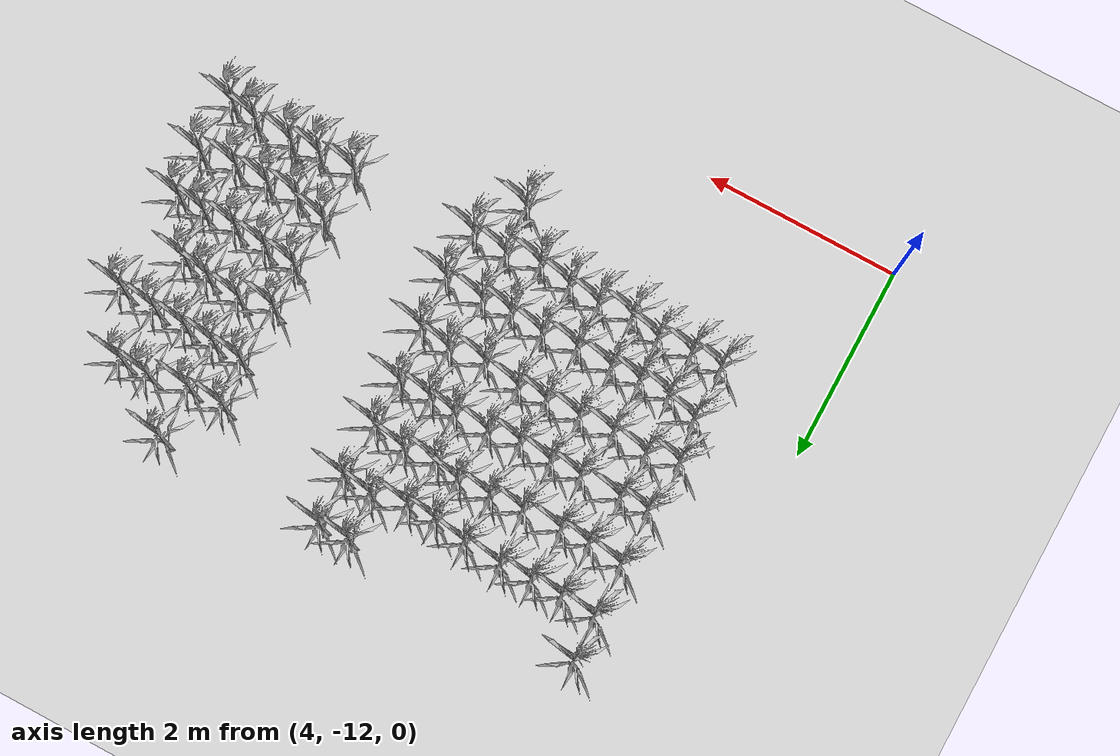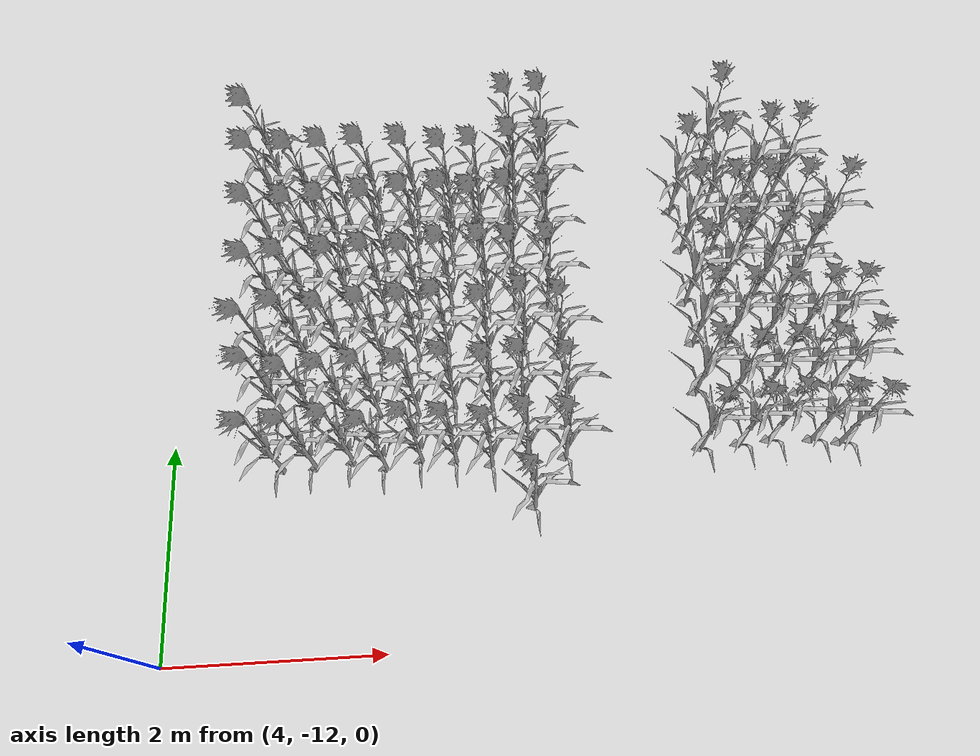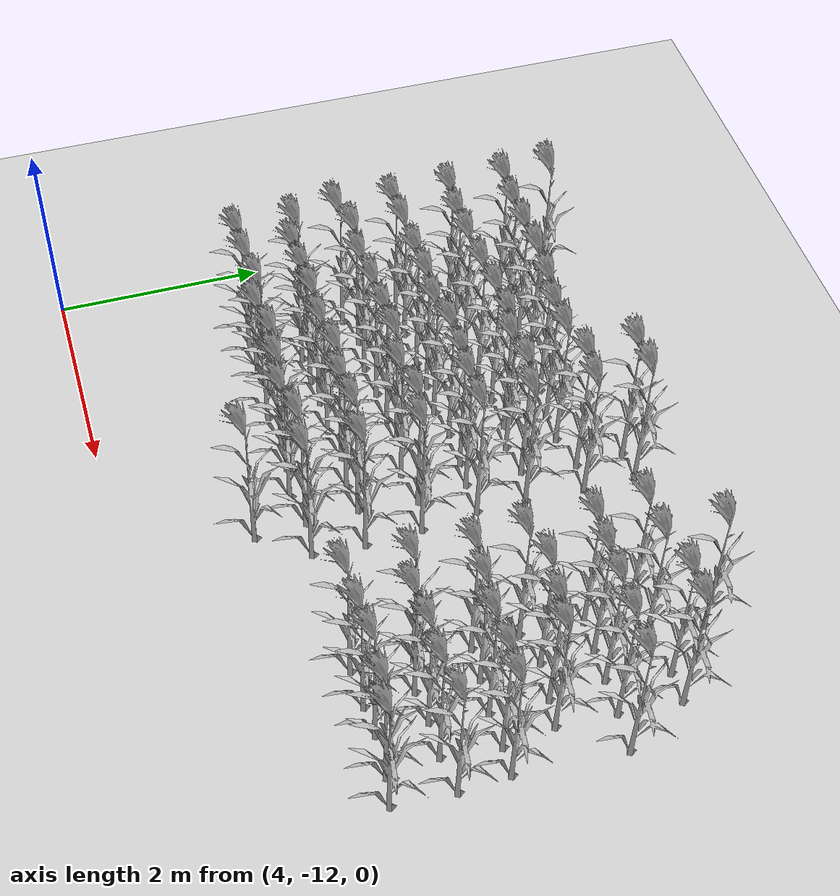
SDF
<sdf version="1.7">
 <world name="farmland_world">
  <model name="ground_plane">
   <static>1</static>
   <link name="link">
    <collision name="collision">
     <geometry><plane><normal>0 0 1</normal><size>40.0 40.0</size></plane></geometry>
     <surface><friction><ode><mu>100</mu><mu2>50</mu2></ode></friction></surface>
    </collision>
    <visual name="visual">
     <cast_shadows>0</cast_shadows>
     <geometry><plane><normal>0 0 1</normal><size>40.0 40.0</size></plane></geometry>
     <material>
      <script><uri>file://media/materials/scripts/gazebo.material</uri><name>Gazebo/Grey</name></script>
     </material>
    </visual>
   </link>
  </model>
  <model name="tree_3_10">
   <static>1</static>
   <link name="link">
    <collision name="collision">
     <geometry><mesh><uri>model://Corn_low_poly/corn.obj</uri><scale>1 1 1</scale></mesh></geometry>
     <surface><friction><ode><mu>100</mu><mu2>50</mu2></ode></friction></surface>
    </collision>
    <visual name="visual">
     <geometry><mesh><uri>model://Corn_low_poly/corn.obj</uri><scale>1 1 1</scale></mesh></geometry>
    </visual>
   </link>
   <pose>4.9650798956197395 -7.193670402811655 0 0 0 0</pose>
  </model>
  <model name="tree_3_11">
   <static>1</static>
   <link name="link">
    <collision name="collision">
     <geometry><mesh><uri>model://Corn_low_poly/corn.obj</uri><scale>1 1 1</scale></mesh></geometry>
     <surface><friction><ode><mu>100</mu><mu2>50</mu2></ode></friction></surface>
    </collision>
    <visual name="visual">
     <geometry><mesh><uri>model://Corn_low_poly/corn.obj</uri><scale>1 1 1</scale></mesh></geometry>
    </visual>
   </link>
   <pose>4.993702073564068 -7.648385346243114 0 0 0 0</pose>
  </model>
  <model name="tree_3_12">
   <static>1</static>
   <link name="link">
    <collision name="collision">
     <geometry><mesh><uri>model://Corn_low_poly/corn.obj</uri><scale>1 1 1</scale></mesh></geometry>
     <surface><friction><ode><mu>100</mu><mu2>50</mu2></ode></friction></surface>
    </collision>
    <visual name="visual">
     <geometry><mesh><uri>model://Corn_low_poly/corn.obj</uri><scale>1 1 1</scale></mesh></geometry>
    </visual>
   </link>
   <pose>5.003658426058906 -8.189910677773742 0 0 0 0</pose>
  </model>
  <model name="tree_3_13">
   <static>1</static>
   <link name="link">
    <collision name="collision">
     <geometry><mesh><uri>model://Corn_low_poly/corn.obj</uri><scale>1 1 1</scale></mesh></geometry>
     <surface><friction><ode><mu>100</mu><mu2>50</mu2></ode></friction></surface>
    </collision>
    <visual name="visual">
     <geometry><mesh><uri>model://Corn_low_poly/corn.obj</uri><scale>1 1 1</scale></mesh></geometry>
    </visual>
   </link>
   <pose>5.020755118753043 -8.75228242143131 0 0 0 0</pose>
  </model>
  <model name="tree_3_14">
   <static>1</static>
   <link name="link">
    <collision name="collision">
     <geometry><mesh><uri>model://Corn_low_poly/corn.obj</uri><scale>1 1 1</scale></mesh></geometry>
     <surface><friction><ode><mu>100</mu><mu2>50</mu2></ode></friction></surface>
    </collision>
    <visual name="visual">
     <geometry><mesh><uri>model://Corn_low_poly/corn.obj</uri><scale>1 1 1</scale></mesh></geometry>
    </visual>
   </link>
   <pose>4.969620573707075 -9.288858709150103 0 0 0 0</pose>
  </model>
  <model name="tree_3_15">
   <static>1</static>
   <link name="link">
    <collision name="collision">
     <geometry><mesh><uri>model://Corn_low_poly/corn.obj</uri><scale>1 1 1</scale></mesh></geometry>
     <surface><friction><ode><mu>100</mu><mu2>50</mu2></ode></friction></surface>
    </collision>
    <visual name="visual">
     <geometry><mesh><uri>model://Corn_low_poly/corn.obj</uri><scale>1 1 1</scale></mesh></geometry>
    </visual>
   </link>
   <pose>5.041643996348989 -9.711755568848426 0 0 0 0</pose>
  </model>
  <model name="tree_3_16">
   <static>1</static>
   <link name="link">
    <collision name="collision">
     <geometry><mesh><uri>model://Corn_low_poly/corn.obj</uri><scale>1 1 1</scale></mesh></geometry>
     <surface><friction><ode><mu>100</mu><mu2>50</mu2></ode></friction></surface>
    </collision>
    <visual name="visual">
     <geometry><mesh><uri>model://Corn_low_poly/corn.obj</uri><scale>1 1 1</scale></mesh></geometry>
    </visual>
   </link>
   <pose>5.045789292416969 -10.260821275985645 0 0 0 0</pose>
  </model>
  <model name="tree_3_41">
   <static>1</static>
   <link name="link">
    <collision name="collision">
     <geometry><mesh><uri>model://Corn_low_poly/corn.obj</uri><scale>1 1 1</scale></mesh></geometry>
     <surface><friction><ode><mu>100</mu><mu2>50</mu2></ode></friction></surface>
    </collision>
    <visual name="visual">
     <geometry><mesh><uri>model://Corn_low_poly/corn.obj</uri><scale>1 1 1</scale></mesh></geometry>
    </visual>
   </link>
   <pose>5.347433770338494 -7.672995002953628 0 0 0 0</pose>
  </model>
  <model name="tree_3_42">
   <static>1</static>
   <link name="link">
    <collision name="collision">
     <geometry><mesh><uri>model://Corn_low_poly/corn.obj</uri><scale>1 1 1</scale></mesh></geometry>
     <surface><friction><ode><mu>100</mu><mu2>50</mu2></ode></friction></surface>
    </collision>
    <visual name="visual">
     <geometry><mesh><uri>model://Corn_low_poly/corn.obj</uri><scale>1 1 1</scale></mesh></geometry>
    </visual>
   </link>
   <pose>5.356484382381352 -8.224193118076165 0 0 0 0</pose>
  </model>
  <model name="tree_3_43">
   <static>1</static>
   <link name="link">
    <collision name="collision">
     <geometry><mesh><uri>model://Corn_low_poly/corn.obj</uri><scale>1 1 1</scale></mesh></geometry>
     <surface><friction><ode><mu>100</mu><mu2>50</mu2></ode></friction></surface>
    </collision>
    <visual name="visual">
     <geometry><mesh><uri>model://Corn_low_poly/corn.obj</uri><scale>1 1 1</scale></mesh></geometry>
    </visual>
   </link>
   <pose>5.3041799792665065 -8.740538514626683 0 0 0 0</pose>
  </model>
  <model name="tree_3_44">
   <static>1</static>
   <link name="link">
    <collision name="collision">
     <geometry><mesh><uri>model://Corn_low_poly/corn.obj</uri><scale>1 1 1</scale></mesh></geometry>
     <surface><friction><ode><mu>100</mu><mu2>50</mu2></ode></friction></surface>
    </collision>
    <visual name="visual">
     <geometry><mesh><uri>model://Corn_low_poly/corn.obj</uri><scale>1 1 1</scale></mesh></geometry>
    </visual>
   </link>
   <pose>5.284650379985434 -9.210675159722184 0 0 0 0</pose>
  </model>
  <model name="tree_3_45">
   <static>1</static>
   <link name="link">
    <collision name="collision">
     <geometry><mesh><uri>model://Corn_low_poly/corn.obj</uri><scale>1 1 1</scale></mesh></geometry>
     <surface><friction><ode><mu>100</mu><mu2>50</mu2></ode></friction></surface>
    </collision>
    <visual name="visual">
     <geometry><mesh><uri>model://Corn_low_poly/corn.obj</uri><scale>1 1 1</scale></mesh></geometry>
    </visual>
   </link>
   <pose>5.3525447544302 -9.800953652820475 0 0 0 0</pose>
  </model>
  <model name="tree_3_46">
   <static>1</static>
   <link name="link">
    <collision name="collision">
     <geometry><mesh><uri>model://Corn_low_poly/corn.obj</uri><scale>1 1 1</scale></mesh></geometry>
     <surface><friction><ode><mu>100</mu><mu2>50</mu2></ode></friction></surface>
    </collision>
    <visual name="visual">
     <geometry><mesh><uri>model://Corn_low_poly/corn.obj</uri><scale>1 1 1</scale></mesh></geometry>
    </visual>
   </link>
   <pose>5.3533770095503845 -10.256783160068105 0 0 0 0</pose>
  </model>
  <model name="tree_3_71">
   <static>1</static>
   <link name="link">
    <collision name="collision">
     <geometry><mesh><uri>model://Corn_low_poly/corn.obj</uri><scale>1 1 1</scale></mesh></geometry>
     <surface><friction><ode><mu>100</mu><mu2>50</mu2></ode></friction></surface>
    </collision>
    <visual name="visual">
     <geometry><mesh><uri>model://Corn_low_poly/corn.obj</uri><scale>1 1 1</scale></mesh></geometry>
    </visual>
   </link>
   <pose>5.661311697878698 -7.669361917047851 0 0 0 0</pose>
  </model>
  <model name="tree_3_72">
   <static>1</static>
   <link name="link">
    <collision name="collision">
     <geometry><mesh><uri>model://Corn_low_poly/corn.obj</uri><scale>1 1 1</scale></mesh></geometry>
     <surface><friction><ode><mu>100</mu><mu2>50</mu2></ode></friction></surface>
    </collision>
    <visual name="visual">
     <geometry><mesh><uri>model://Corn_low_poly/corn.obj</uri><scale>1 1 1</scale></mesh></geometry>
    </visual>
   </link>
   <pose>5.6439205396495575 -8.217048657555292 0 0 0 0</pose>
  </model>
  <model name="tree_3_73">
   <static>1</static>
   <link name="link">
    <collision name="collision">
     <geometry><mesh><uri>model://Corn_low_poly/corn.obj</uri><scale>1 1 1</scale></mesh></geometry>
     <surface><friction><ode><mu>100</mu><mu2>50</mu2></ode></friction></surface>
    </collision>
    <visual name="visual">
     <geometry><mesh><uri>model://Corn_low_poly/corn.obj</uri><scale>1 1 1</scale></mesh></geometry>
    </visual>
   </link>
   <pose>5.719555361144498 -8.738605992374277 0 0 0 0</pose>
  </model>
  <model name="tree_3_74">
   <static>1</static>
   <link name="link">
    <collision name="collision">
     <geometry><mesh><uri>model://Corn_low_poly/corn.obj</uri><scale>1 1 1</scale></mesh></geometry>
     <surface><friction><ode><mu>100</mu><mu2>50</mu2></ode></friction></surface>
    </collision>
    <visual name="visual">
     <geometry><mesh><uri>model://Corn_low_poly/corn.obj</uri><scale>1 1 1</scale></mesh></geometry>
    </visual>
   </link>
   <pose>5.646397490240546 -9.248619289029806 0 0 0 0</pose>
  </model>
  <model name="tree_3_75">
   <static>1</static>
   <link name="link">
    <collision name="collision">
     <geometry><mesh><uri>model://Corn_low_poly/corn.obj</uri><scale>1 1 1</scale></mesh></geometry>
     <surface><friction><ode><mu>100</mu><mu2>50</mu2></ode></friction></surface>
    </collision>
    <visual name="visual">
     <geometry><mesh><uri>model://Corn_low_poly/corn.obj</uri><scale>1 1 1</scale></mesh></geometry>
    </visual>
   </link>
   <pose>5.66070874612616 -9.793900644178425 0 0 0 0</pose>
  </model>
  <model name="tree_3_76">
   <static>1</static>
   <link name="link">
    <collision name="collision">
     <geometry><mesh><uri>model://Corn_low_poly/corn.obj</uri><scale>1 1 1</scale></mesh></geometry>
     <surface><friction><ode><mu>100</mu><mu2>50</mu2></ode></friction></surface>
    </collision>
    <visual name="visual">
     <geometry><mesh><uri>model://Corn_low_poly/corn.obj</uri><scale>1 1 1</scale></mesh></geometry>
    </visual>
   </link>
   <pose>5.698885564872083 -10.226248882863663 0 0 0 0</pose>
  </model>
  <model name="tree_3_101">
   <static>1</static>
   <link name="link">
    <collision name="collision">
     <geometry><mesh><uri>model://Corn_low_poly/corn.obj</uri><scale>1 1 1</scale></mesh></geometry>
     <surface><friction><ode><mu>100</mu><mu2>50</mu2></ode></friction></surface>
    </collision>
    <visual name="visual">
     <geometry><mesh><uri>model://Corn_low_poly/corn.obj</uri><scale>1 1 1</scale></mesh></geometry>
    </visual>
   </link>
   <pose>5.985646158219377 -7.658703395121995 0 0 0 0</pose>
  </model>
  <model name="tree_3_102">
   <static>1</static>
   <link name="link">
    <collision name="collision">
     <geometry><mesh><uri>model://Corn_low_poly/corn.obj</uri><scale>1 1 1</scale></mesh></geometry>
     <surface><friction><ode><mu>100</mu><mu2>50</mu2></ode></friction></surface>
    </collision>
    <visual name="visual">
     <geometry><mesh><uri>model://Corn_low_poly/corn.obj</uri><scale>1 1 1</scale></mesh></geometry>
    </visual>
   </link>
   <pose>6.039260208164918 -8.204060399303113 0 0 0 0</pose>
  </model>
  <model name="tree_3_103">
   <static>1</static>
   <link name="link">
    <collision name="collision">
     <geometry><mesh><uri>model://Corn_low_poly/corn.obj</uri><scale>1 1 1</scale></mesh></geometry>
     <surface><friction><ode><mu>100</mu><mu2>50</mu2></ode></friction></surface>
    </collision>
    <visual name="visual">
     <geometry><mesh><uri>model://Corn_low_poly/corn.obj</uri><scale>1 1 1</scale></mesh></geometry>
    </visual>
   </link>
   <pose>6.029144638197376 -8.72626368128247 0 0 0 0</pose>
  </model>
  <model name="tree_3_104">
   <static>1</static>
   <link name="link">
    <collision name="collision">
     <geometry><mesh><uri>model://Corn_low_poly/corn.obj</uri><scale>1 1 1</scale></mesh></geometry>
     <surface><friction><ode><mu>100</mu><mu2>50</mu2></ode></friction></surface>
    </collision>
    <visual name="visual">
     <geometry><mesh><uri>model://Corn_low_poly/corn.obj</uri><scale>1 1 1</scale></mesh></geometry>
    </visual>
   </link>
   <pose>5.994824262655085 -9.222952666662453 0 0 0 0</pose>
  </model>
  <model name="tree_3_105">
   <static>1</static>
   <link name="link">
    <collision name="collision">
     <geometry><mesh><uri>model://Corn_low_poly/corn.obj</uri><scale>1 1 1</scale></mesh></geometry>
     <surface><friction><ode><mu>100</mu><mu2>50</mu2></ode></friction></surface>
    </collision>
    <visual name="visual">
     <geometry><mesh><uri>model://Corn_low_poly/corn.obj</uri><scale>1 1 1</scale></mesh></geometry>
    </visual>
   </link>
   <pose>5.953345509949654 -9.779086508931684 0 0 0 0</pose>
  </model>
  <model name="tree_3_106">
   <static>1</static>
   <link name="link">
    <collision name="collision">
     <geometry><mesh><uri>model://Corn_low_poly/corn.obj</uri><scale>1 1 1</scale></mesh></geometry>
     <surface><friction><ode><mu>100</mu><mu2>50</mu2></ode></friction></surface>
    </collision>
    <visual name="visual">
     <geometry><mesh><uri>model://Corn_low_poly/corn.obj</uri><scale>1 1 1</scale></mesh></geometry>
    </visual>
   </link>
   <pose>6.00638727377476 -10.301760527313881 0 0 0 0</pose>
  </model>
  <model name="tree_3_131">
   <static>1</static>
   <link name="link">
    <collision name="collision">
     <geometry><mesh><uri>model://Corn_low_poly/corn.obj</uri><scale>1 1 1</scale></mesh></geometry>
     <surface><friction><ode><mu>100</mu><mu2>50</mu2></ode></friction></surface>
    </collision>
    <visual name="visual">
     <geometry><mesh><uri>model://Corn_low_poly/corn.obj</uri><scale>1 1 1</scale></mesh></geometry>
    </visual>
   </link>
   <pose>6.373540733278397 -7.6818291887618955 0 0 0 0</pose>
  </model>
  <model name="tree_3_132">
   <static>1</static>
   <link name="link">
    <collision name="collision">
     <geometry><mesh><uri>model://Corn_low_poly/corn.obj</uri><scale>1 1 1</scale></mesh></geometry>
     <surface><friction><ode><mu>100</mu><mu2>50</mu2></ode></friction></surface>
    </collision>
    <visual name="visual">
     <geometry><mesh><uri>model://Corn_low_poly/corn.obj</uri><scale>1 1 1</scale></mesh></geometry>
    </visual>
   </link>
   <pose>6.372202885585181 -8.173757598020659 0 0 0 0</pose>
  </model>
  <model name="tree_3_133">
   <static>1</static>
   <link name="link">
    <collision name="collision">
     <geometry><mesh><uri>model://Corn_low_poly/corn.obj</uri><scale>1 1 1</scale></mesh></geometry>
     <surface><friction><ode><mu>100</mu><mu2>50</mu2></ode></friction></surface>
    </collision>
    <visual name="visual">
     <geometry><mesh><uri>model://Corn_low_poly/corn.obj</uri><scale>1 1 1</scale></mesh></geometry>
    </visual>
   </link>
   <pose>6.366044787179501 -8.75261835114188 0 0 0 0</pose>
  </model>
  <model name="tree_3_134">
   <static>1</static>
   <link name="link">
    <collision name="collision">
     <geometry><mesh><uri>model://Corn_low_poly/corn.obj</uri><scale>1 1 1</scale></mesh></geometry>
     <surface><friction><ode><mu>100</mu><mu2>50</mu2></ode></friction></surface>
    </collision>
    <visual name="visual">
     <geometry><mesh><uri>model://Corn_low_poly/corn.obj</uri><scale>1 1 1</scale></mesh></geometry>
    </visual>
   </link>
   <pose>6.341128701908847 -9.213851420503325 0 0 0 0</pose>
  </model>
  <model name="tree_3_135">
   <static>1</static>
   <link name="link">
    <collision name="collision">
     <geometry><mesh><uri>model://Corn_low_poly/corn.obj</uri><scale>1 1 1</scale></mesh></geometry>
     <surface><friction><ode><mu>100</mu><mu2>50</mu2></ode></friction></surface>
    </collision>
    <visual name="visual">
     <geometry><mesh><uri>model://Corn_low_poly/corn.obj</uri><scale>1 1 1</scale></mesh></geometry>
    </visual>
   </link>
   <pose>6.322286093233531 -9.793420267122933 0 0 0 0</pose>
  </model>
  <model name="tree_3_136">
   <static>1</static>
   <link name="link">
    <collision name="collision">
     <geometry><mesh><uri>model://Corn_low_poly/corn.obj</uri><scale>1 1 1</scale></mesh></geometry>
     <surface><friction><ode><mu>100</mu><mu2>50</mu2></ode></friction></surface>
    </collision>
    <visual name="visual">
     <geometry><mesh><uri>model://Corn_low_poly/corn.obj</uri><scale>1 1 1</scale></mesh></geometry>
    </visual>
   </link>
   <pose>6.340955341934287 -10.248210584478237 0 0 0 0</pose>
  </model>
  <model name="tree_3_161">
   <static>1</static>
   <link name="link">
    <collision name="collision">
     <geometry><mesh><uri>model://Corn_low_poly/corn.obj</uri><scale>1 1 1</scale></mesh></geometry>
     <surface><friction><ode><mu>100</mu><mu2>50</mu2></ode></friction></surface>
    </collision>
    <visual name="visual">
     <geometry><mesh><uri>model://Corn_low_poly/corn.obj</uri><scale>1 1 1</scale></mesh></geometry>
    </visual>
   </link>
   <pose>6.716355894666865 -7.737704395986859 0 0 0 0</pose>
  </model>
  <model name="tree_3_162">
   <static>1</static>
   <link name="link">
    <collision name="collision">
     <geometry><mesh><uri>model://Corn_low_poly/corn.obj</uri><scale>1 1 1</scale></mesh></geometry>
     <surface><friction><ode><mu>100</mu><mu2>50</mu2></ode></friction></surface>
    </collision>
    <visual name="visual">
     <geometry><mesh><uri>model://Corn_low_poly/corn.obj</uri><scale>1 1 1</scale></mesh></geometry>
    </visual>
   </link>
   <pose>6.707527495847406 -8.160439321991369 0 0 0 0</pose>
  </model>
  <model name="tree_3_163">
   <static>1</static>
   <link name="link">
    <collision name="collision">
     <geometry><mesh><uri>model://Corn_low_poly/corn.obj</uri><scale>1 1 1</scale></mesh></geometry>
     <surface><friction><ode><mu>100</mu><mu2>50</mu2></ode></friction></surface>
    </collision>
    <visual name="visual">
     <geometry><mesh><uri>model://Corn_low_poly/corn.obj</uri><scale>1 1 1</scale></mesh></geometry>
    </visual>
   </link>
   <pose>6.676728354621521 -8.69605451618807 0 0 0 0</pose>
  </model>
  <model name="tree_3_164">
   <static>1</static>
   <link name="link">
    <collision name="collision">
     <geometry><mesh><uri>model://Corn_low_poly/corn.obj</uri><scale>1 1 1</scale></mesh></geometry>
     <surface><friction><ode><mu>100</mu><mu2>50</mu2></ode></friction></surface>
    </collision>
    <visual name="visual">
     <geometry><mesh><uri>model://Corn_low_poly/corn.obj</uri><scale>1 1 1</scale></mesh></geometry>
    </visual>
   </link>
   <pose>6.631105759231535 -9.200464305325195 0 0 0 0</pose>
  </model>
  <model name="tree_3_165">
   <static>1</static>
   <link name="link">
    <collision name="collision">
     <geometry><mesh><uri>model://Corn_low_poly/corn.obj</uri><scale>1 1 1</scale></mesh></geometry>
     <surface><friction><ode><mu>100</mu><mu2>50</mu2></ode></friction></surface>
    </collision>
    <visual name="visual">
     <geometry><mesh><uri>model://Corn_low_poly/corn.obj</uri><scale>1 1 1</scale></mesh></geometry>
    </visual>
   </link>
   <pose>6.673765809602625 -9.748652084910914 0 0 0 0</pose>
  </model>
  <model name="tree_3_166">
   <static>1</static>
   <link name="link">
    <collision name="collision">
     <geometry><mesh><uri>model://Corn_low_poly/corn.obj</uri><scale>1 1 1</scale></mesh></geometry>
     <surface><friction><ode><mu>100</mu><mu2>50</mu2></ode></friction></surface>
    </collision>
    <visual name="visual">
     <geometry><mesh><uri>model://Corn_low_poly/corn.obj</uri><scale>1 1 1</scale></mesh></geometry>
    </visual>
   </link>
   <pose>6.6638486366236735 -10.27659725007499 0 0 0 0</pose>
  </model>
  <model name="tree_3_191">
   <static>1</static>
   <link name="link">
    <collision name="collision">
     <geometry><mesh><uri>model://Corn_low_poly/corn.obj</uri><scale>1 1 1</scale></mesh></geometry>
     <surface><friction><ode><mu>100</mu><mu2>50</mu2></ode></friction></surface>
    </collision>
    <visual name="visual">
     <geometry><mesh><uri>model://Corn_low_poly/corn.obj</uri><scale>1 1 1</scale></mesh></geometry>
    </visual>
   </link>
   <pose>7.000311583929282 -7.736366997130274 0 0 0 0</pose>
  </model>
  <model name="tree_3_192">
   <static>1</static>
   <link name="link">
    <collision name="collision">
     <geometry><mesh><uri>model://Corn_low_poly/corn.obj</uri><scale>1 1 1</scale></mesh></geometry>
     <surface><friction><ode><mu>100</mu><mu2>50</mu2></ode></friction></surface>
    </collision>
    <visual name="visual">
     <geometry><mesh><uri>model://Corn_low_poly/corn.obj</uri><scale>1 1 1</scale></mesh></geometry>
    </visual>
   </link>
   <pose>6.969106373423477 -8.223321744059641 0 0 0 0</pose>
  </model>
  <model name="tree_3_193">
   <static>1</static>
   <link name="link">
    <collision name="collision">
     <geometry><mesh><uri>model://Corn_low_poly/corn.obj</uri><scale>1 1 1</scale></mesh></geometry>
     <surface><friction><ode><mu>100</mu><mu2>50</mu2></ode></friction></surface>
    </collision>
    <visual name="visual">
     <geometry><mesh><uri>model://Corn_low_poly/corn.obj</uri><scale>1 1 1</scale></mesh></geometry>
    </visual>
   </link>
   <pose>7.0354257160998666 -8.698599415208227 0 0 0 0</pose>
  </model>
  <model name="tree_3_194">
   <static>1</static>
   <link name="link">
    <collision name="collision">
     <geometry><mesh><uri>model://Corn_low_poly/corn.obj</uri><scale>1 1 1</scale></mesh></geometry>
     <surface><friction><ode><mu>100</mu><mu2>50</mu2></ode></friction></surface>
    </collision>
    <visual name="visual">
     <geometry><mesh><uri>model://Corn_low_poly/corn.obj</uri><scale>1 1 1</scale></mesh></geometry>
    </visual>
   </link>
   <pose>7.016016872381592 -9.26633794154723 0 0 0 0</pose>
  </model>
  <model name="tree_3_195">
   <static>1</static>
   <link name="link">
    <collision name="collision">
     <geometry><mesh><uri>model://Corn_low_poly/corn.obj</uri><scale>1 1 1</scale></mesh></geometry>
     <surface><friction><ode><mu>100</mu><mu2>50</mu2></ode></friction></surface>
    </collision>
    <visual name="visual">
     <geometry><mesh><uri>model://Corn_low_poly/corn.obj</uri><scale>1 1 1</scale></mesh></geometry>
    </visual>
   </link>
   <pose>7.027167011870498 -9.792437796397232 0 0 0 0</pose>
  </model>
  <model name="tree_3_196">
   <static>1</static>
   <link name="link">
    <collision name="collision">
     <geometry><mesh><uri>model://Corn_low_poly/corn.obj</uri><scale>1 1 1</scale></mesh></geometry>
     <surface><friction><ode><mu>100</mu><mu2>50</mu2></ode></friction></surface>
    </collision>
    <visual name="visual">
     <geometry><mesh><uri>model://Corn_low_poly/corn.obj</uri><scale>1 1 1</scale></mesh></geometry>
    </visual>
   </link>
   <pose>6.998509001560315 -10.324810387990603 0 0 0 0</pose>
  </model>
  <model name="tree_3_220">
   <static>1</static>
   <link name="link">
    <collision name="collision">
     <geometry><mesh><uri>model://Corn_low_poly/corn.obj</uri><scale>1 1 1</scale></mesh></geometry>
     <surface><friction><ode><mu>100</mu><mu2>50</mu2></ode></friction></surface>
    </collision>
    <visual name="visual">
     <geometry><mesh><uri>model://Corn_low_poly/corn.obj</uri><scale>1 1 1</scale></mesh></geometry>
    </visual>
   </link>
   <pose>7.333557292185769 -7.192689295135034 0 0 0 0</pose>
  </model>
  <model name="tree_3_221">
   <static>1</static>
   <link name="link">
    <collision name="collision">
     <geometry><mesh><uri>model://Corn_low_poly/corn.obj</uri><scale>1 1 1</scale></mesh></geometry>
     <surface><friction><ode><mu>100</mu><mu2>50</mu2></ode></friction></surface>
    </collision>
    <visual name="visual">
     <geometry><mesh><uri>model://Corn_low_poly/corn.obj</uri><scale>1 1 1</scale></mesh></geometry>
    </visual>
   </link>
   <pose>7.35149359200754 -7.658956162408567 0 0 0 0</pose>
  </model>
  <model name="tree_3_222">
   <static>1</static>
   <link name="link">
    <collision name="collision">
     <geometry><mesh><uri>model://Corn_low_poly/corn.obj</uri><scale>1 1 1</scale></mesh></geometry>
     <surface><friction><ode><mu>100</mu><mu2>50</mu2></ode></friction></surface>
    </collision>
    <visual name="visual">
     <geometry><mesh><uri>model://Corn_low_poly/corn.obj</uri><scale>1 1 1</scale></mesh></geometry>
    </visual>
   </link>
   <pose>7.287806354683445 -8.17942623815544 0 0 0 0</pose>
  </model>
  <model name="tree_3_223">
   <static>1</static>
   <link name="link">
    <collision name="collision">
     <geometry><mesh><uri>model://Corn_low_poly/corn.obj</uri><scale>1 1 1</scale></mesh></geometry>
     <surface><friction><ode><mu>100</mu><mu2>50</mu2></ode></friction></surface>
    </collision>
    <visual name="visual">
     <geometry><mesh><uri>model://Corn_low_poly/corn.obj</uri><scale>1 1 1</scale></mesh></geometry>
    </visual>
   </link>
   <pose>7.297995084521337 -8.722580301019502 0 0 0 0</pose>
  </model>
  <model name="tree_3_224">
   <static>1</static>
   <link name="link">
    <collision name="collision">
     <geometry><mesh><uri>model://Corn_low_poly/corn.obj</uri><scale>1 1 1</scale></mesh></geometry>
     <surface><friction><ode><mu>100</mu><mu2>50</mu2></ode></friction></surface>
    </collision>
    <visual name="visual">
     <geometry><mesh><uri>model://Corn_low_poly/corn.obj</uri><scale>1 1 1</scale></mesh></geometry>
    </visual>
   </link>
   <pose>7.368613458871989 -9.204936440424559 0 0 0 0</pose>
  </model>
  <model name="tree_3_225">
   <static>1</static>
   <link name="link">
    <collision name="collision">
     <geometry><mesh><uri>model://Corn_low_poly/corn.obj</uri><scale>1 1 1</scale></mesh></geometry>
     <surface><friction><ode><mu>100</mu><mu2>50</mu2></ode></friction></surface>
    </collision>
    <visual name="visual">
     <geometry><mesh><uri>model://Corn_low_poly/corn.obj</uri><scale>1 1 1</scale></mesh></geometry>
    </visual>
   </link>
   <pose>7.315396992477377 -9.763208704090252 0 0 0 0</pose>
  </model>
  <model name="tree_3_226">
   <static>1</static>
   <link name="link">
    <collision name="collision">
     <geometry><mesh><uri>model://Corn_low_poly/corn.obj</uri><scale>1 1 1</scale></mesh></geometry>
     <surface><friction><ode><mu>100</mu><mu2>50</mu2></ode></friction></surface>
    </collision>
    <visual name="visual">
     <geometry><mesh><uri>model://Corn_low_poly/corn.obj</uri><scale>1 1 1</scale></mesh></geometry>
    </visual>
   </link>
   <pose>7.333482017778501 -10.257442969045329 0 0 0 0</pose>
  </model>
  <model name="tree_3_227">
   <static>1</static>
   <link name="link">
    <collision name="collision">
     <geometry><mesh><uri>model://Corn_low_poly/corn.obj</uri><scale>1 1 1</scale></mesh></geometry>
     <surface><friction><ode><mu>100</mu><mu2>50</mu2></ode></friction></surface>
    </collision>
    <visual name="visual">
     <geometry><mesh><uri>model://Corn_low_poly/corn.obj</uri><scale>1 1 1</scale></mesh></geometry>
    </visual>
   </link>
   <pose>7.374578958075521 -10.743990523598933 0 0 0 0</pose>
  </model>
  <model name="tree_3_250">
   <static>1</static>
   <link name="link">
    <collision name="collision">
     <geometry><mesh><uri>model://Corn_low_poly/corn.obj</uri><scale>1 1 1</scale></mesh></geometry>
     <surface><friction><ode><mu>100</mu><mu2>50</mu2></ode></friction></surface>
    </collision>
    <visual name="visual">
     <geometry><mesh><uri>model://Corn_low_poly/corn.obj</uri><scale>1 1 1</scale></mesh></geometry>
    </visual>
   </link>
   <pose>7.635001736811245 -7.1887812025689914 0 0 0 0</pose>
  </model>
  <model name="tree_3_251">
   <static>1</static>
   <link name="link">
    <collision name="collision">
     <geometry><mesh><uri>model://Corn_low_poly/corn.obj</uri><scale>1 1 1</scale></mesh></geometry>
     <surface><friction><ode><mu>100</mu><mu2>50</mu2></ode></friction></surface>
    </collision>
    <visual name="visual">
     <geometry><mesh><uri>model://Corn_low_poly/corn.obj</uri><scale>1 1 1</scale></mesh></geometry>
    </visual>
   </link>
   <pose>7.6471158698127635 -7.690438857786324 0 0 0 0</pose>
  </model>
  <model name="tree_3_252">
   <static>1</static>
   <link name="link">
    <collision name="collision">
     <geometry><mesh><uri>model://Corn_low_poly/corn.obj</uri><scale>1 1 1</scale></mesh></geometry>
     <surface><friction><ode><mu>100</mu><mu2>50</mu2></ode></friction></surface>
    </collision>
    <visual name="visual">
     <geometry><mesh><uri>model://Corn_low_poly/corn.obj</uri><scale>1 1 1</scale></mesh></geometry>
    </visual>
   </link>
   <pose>7.620635269281182 -8.25019787831717 0 0 0 0</pose>
  </model>
  <model name="tree_3_253">
   <static>1</static>
   <link name="link">
    <collision name="collision">
     <geometry><mesh><uri>model://Corn_low_poly/corn.obj</uri><scale>1 1 1</scale></mesh></geometry>
     <surface><friction><ode><mu>100</mu><mu2>50</mu2></ode></friction></surface>
    </collision>
    <visual name="visual">
     <geometry><mesh><uri>model://Corn_low_poly/corn.obj</uri><scale>1 1 1</scale></mesh></geometry>
    </visual>
   </link>
   <pose>7.62443281904786 -8.719268950950203 0 0 0 0</pose>
  </model>
  <model name="tree_3_254">
   <static>1</static>
   <link name="link">
    <collision name="collision">
     <geometry><mesh><uri>model://Corn_low_poly/corn.obj</uri><scale>1 1 1</scale></mesh></geometry>
     <surface><friction><ode><mu>100</mu><mu2>50</mu2></ode></friction></surface>
    </collision>
    <visual name="visual">
     <geometry><mesh><uri>model://Corn_low_poly/corn.obj</uri><scale>1 1 1</scale></mesh></geometry>
    </visual>
   </link>
   <pose>7.689035022372194 -9.262581364216832 0 0 0 0</pose>
  </model>
  <model name="tree_3_255">
   <static>1</static>
   <link name="link">
    <collision name="collision">
     <geometry><mesh><uri>model://Corn_low_poly/corn.obj</uri><scale>1 1 1</scale></mesh></geometry>
     <surface><friction><ode><mu>100</mu><mu2>50</mu2></ode></friction></surface>
    </collision>
    <visual name="visual">
     <geometry><mesh><uri>model://Corn_low_poly/corn.obj</uri><scale>1 1 1</scale></mesh></geometry>
    </visual>
   </link>
   <pose>7.719204389873397 -9.79984768128034 0 0 0 0</pose>
  </model>
  <model name="tree_3_256">
   <static>1</static>
   <link name="link">
    <collision name="collision">
     <geometry><mesh><uri>model://Corn_low_poly/corn.obj</uri><scale>1 1 1</scale></mesh></geometry>
     <surface><friction><ode><mu>100</mu><mu2>50</mu2></ode></friction></surface>
    </collision>
    <visual name="visual">
     <geometry><mesh><uri>model://Corn_low_poly/corn.obj</uri><scale>1 1 1</scale></mesh></geometry>
    </visual>
   </link>
   <pose>7.692024863550409 -10.29143175373595 0 0 0 0</pose>
  </model>
  <model name="tree_3_281">
   <static>1</static>
   <link name="link">
    <collision name="collision">
     <geometry><mesh><uri>model://Corn_low_poly/corn.obj</uri><scale>1 1 1</scale></mesh></geometry>
     <surface><friction><ode><mu>100</mu><mu2>50</mu2></ode></friction></surface>
    </collision>
    <visual name="visual">
     <geometry><mesh><uri>model://Corn_low_poly/corn.obj</uri><scale>1 1 1</scale></mesh></geometry>
    </visual>
   </link>
   <pose>8.964598388169719 -7.7291985321842915 0 0 0 0</pose>
  </model>
  <model name="tree_3_282">
   <static>1</static>
   <link name="link">
    <collision name="collision">
     <geometry><mesh><uri>model://Corn_low_poly/corn.obj</uri><scale>1 1 1</scale></mesh></geometry>
     <surface><friction><ode><mu>100</mu><mu2>50</mu2></ode></friction></surface>
    </collision>
    <visual name="visual">
     <geometry><mesh><uri>model://Corn_low_poly/corn.obj</uri><scale>1 1 1</scale></mesh></geometry>
    </visual>
   </link>
   <pose>9.028310869086232 -8.18686927832509 0 0 0 0</pose>
  </model>
  <model name="tree_3_283">
   <static>1</static>
   <link name="link">
    <collision name="collision">
     <geometry><mesh><uri>model://Corn_low_poly/corn.obj</uri><scale>1 1 1</scale></mesh></geometry>
     <surface><friction><ode><mu>100</mu><mu2>50</mu2></ode></friction></surface>
    </collision>
    <visual name="visual">
     <geometry><mesh><uri>model://Corn_low_poly/corn.obj</uri><scale>1 1 1</scale></mesh></geometry>
    </visual>
   </link>
   <pose>9.002997616971266 -8.771147870469363 0 0 0 0</pose>
  </model>
  <model name="tree_3_284">
   <static>1</static>
   <link name="link">
    <collision name="collision">
     <geometry><mesh><uri>model://Corn_low_poly/corn.obj</uri><scale>1 1 1</scale></mesh></geometry>
     <surface><friction><ode><mu>100</mu><mu2>50</mu2></ode></friction></surface>
    </collision>
    <visual name="visual">
     <geometry><mesh><uri>model://Corn_low_poly/corn.obj</uri><scale>1 1 1</scale></mesh></geometry>
    </visual>
   </link>
   <pose>9.02899137073964 -9.21251410996953 0 0 0 0</pose>
  </model>
  <model name="tree_3_285">
   <static>1</static>
   <link name="link">
    <collision name="collision">
     <geometry><mesh><uri>model://Corn_low_poly/corn.obj</uri><scale>1 1 1</scale></mesh></geometry>
     <surface><friction><ode><mu>100</mu><mu2>50</mu2></ode></friction></surface>
    </collision>
    <visual name="visual">
     <geometry><mesh><uri>model://Corn_low_poly/corn.obj</uri><scale>1 1 1</scale></mesh></geometry>
    </visual>
   </link>
   <pose>8.993938350092112 -9.720425029515413 0 0 0 0</pose>
  </model>
  <model name="tree_3_286">
   <static>1</static>
   <link name="link">
    <collision name="collision">
     <geometry><mesh><uri>model://Corn_low_poly/corn.obj</uri><scale>1 1 1</scale></mesh></geometry>
     <surface><friction><ode><mu>100</mu><mu2>50</mu2></ode></friction></surface>
    </collision>
    <visual name="visual">
     <geometry><mesh><uri>model://Corn_low_poly/corn.obj</uri><scale>1 1 1</scale></mesh></geometry>
    </visual>
   </link>
   <pose>8.972500940884867 -10.276786149594631 0 0 0 0</pose>
  </model>
  <model name="tree_3_310">
   <static>1</static>
   <link name="link">
    <collision name="collision">
     <geometry><mesh><uri>model://Corn_low_poly/corn.obj</uri><scale>1 1 1</scale></mesh></geometry>
     <surface><friction><ode><mu>100</mu><mu2>50</mu2></ode></friction></surface>
    </collision>
    <visual name="visual">
     <geometry><mesh><uri>model://Corn_low_poly/corn.obj</uri><scale>1 1 1</scale></mesh></geometry>
    </visual>
   </link>
   <pose>9.338208797783237 -7.191476248947486 0 0 0 0</pose>
  </model>
  <model name="tree_3_311">
   <static>1</static>
   <link name="link">
    <collision name="collision">
     <geometry><mesh><uri>model://Corn_low_poly/corn.obj</uri><scale>1 1 1</scale></mesh></geometry>
     <surface><friction><ode><mu>100</mu><mu2>50</mu2></ode></friction></surface>
    </collision>
    <visual name="visual">
     <geometry><mesh><uri>model://Corn_low_poly/corn.obj</uri><scale>1 1 1</scale></mesh></geometry>
    </visual>
   </link>
   <pose>9.327965100361302 -7.726715672016623 0 0 0 0</pose>
  </model>
  <model name="tree_3_312">
   <static>1</static>
   <link name="link">
    <collision name="collision">
     <geometry><mesh><uri>model://Corn_low_poly/corn.obj</uri><scale>1 1 1</scale></mesh></geometry>
     <surface><friction><ode><mu>100</mu><mu2>50</mu2></ode></friction></surface>
    </collision>
    <visual name="visual">
     <geometry><mesh><uri>model://Corn_low_poly/corn.obj</uri><scale>1 1 1</scale></mesh></geometry>
    </visual>
   </link>
   <pose>9.33374451544654 -8.20570428801698 0 0 0 0</pose>
  </model>
  <model name="tree_3_313">
   <static>1</static>
   <link name="link">
    <collision name="collision">
     <geometry><mesh><uri>model://Corn_low_poly/corn.obj</uri><scale>1 1 1</scale></mesh></geometry>
     <surface><friction><ode><mu>100</mu><mu2>50</mu2></ode></friction></surface>
    </collision>
    <visual name="visual">
     <geometry><mesh><uri>model://Corn_low_poly/corn.obj</uri><scale>1 1 1</scale></mesh></geometry>
    </visual>
   </link>
   <pose>9.329593933244755 -8.68820846582495 0 0 0 0</pose>
  </model>
  <model name="tree_3_314">
   <static>1</static>
   <link name="link">
    <collision name="collision">
     <geometry><mesh><uri>model://Corn_low_poly/corn.obj</uri><scale>1 1 1</scale></mesh></geometry>
     <surface><friction><ode><mu>100</mu><mu2>50</mu2></ode></friction></surface>
    </collision>
    <visual name="visual">
     <geometry><mesh><uri>model://Corn_low_poly/corn.obj</uri><scale>1 1 1</scale></mesh></geometry>
    </visual>
   </link>
   <pose>9.349616334257872 -9.234565855211903 0 0 0 0</pose>
  </model>
  <model name="tree_3_315">
   <static>1</static>
   <link name="link">
    <collision name="collision">
     <geometry><mesh><uri>model://Corn_low_poly/corn.obj</uri><scale>1 1 1</scale></mesh></geometry>
     <surface><friction><ode><mu>100</mu><mu2>50</mu2></ode></friction></surface>
    </collision>
    <visual name="visual">
     <geometry><mesh><uri>model://Corn_low_poly/corn.obj</uri><scale>1 1 1</scale></mesh></geometry>
    </visual>
   </link>
   <pose>9.316421454867536 -9.804928795947395 0 0 0 0</pose>
  </model>
  <model name="tree_3_316">
   <static>1</static>
   <link name="link">
    <collision name="collision">
     <geometry><mesh><uri>model://Corn_low_poly/corn.obj</uri><scale>1 1 1</scale></mesh></geometry>
     <surface><friction><ode><mu>100</mu><mu2>50</mu2></ode></friction></surface>
    </collision>
    <visual name="visual">
     <geometry><mesh><uri>model://Corn_low_poly/corn.obj</uri><scale>1 1 1</scale></mesh></geometry>
    </visual>
   </link>
   <pose>9.340867578535518 -10.261238131493858 0 0 0 0</pose>
  </model>
  <model name="tree_3_341">
   <static>1</static>
   <link name="link">
    <collision name="collision">
     <geometry><mesh><uri>model://Corn_low_poly/corn.obj</uri><scale>1 1 1</scale></mesh></geometry>
     <surface><friction><ode><mu>100</mu><mu2>50</mu2></ode></friction></surface>
    </collision>
    <visual name="visual">
     <geometry><mesh><uri>model://Corn_low_poly/corn.obj</uri><scale>1 1 1</scale></mesh></geometry>
    </visual>
   </link>
   <pose>9.719964364296922 -7.645710678107171 0 0 0 0</pose>
  </model>
  <model name="tree_3_342">
   <static>1</static>
   <link name="link">
    <collision name="collision">
     <geometry><mesh><uri>model://Corn_low_poly/corn.obj</uri><scale>1 1 1</scale></mesh></geometry>
     <surface><friction><ode><mu>100</mu><mu2>50</mu2></ode></friction></surface>
    </collision>
    <visual name="visual">
     <geometry><mesh><uri>model://Corn_low_poly/corn.obj</uri><scale>1 1 1</scale></mesh></geometry>
    </visual>
   </link>
   <pose>9.636850859187621 -8.213731955938924 0 0 0 0</pose>
  </model>
  <model name="tree_3_343">
   <static>1</static>
   <link name="link">
    <collision name="collision">
     <geometry><mesh><uri>model://Corn_low_poly/corn.obj</uri><scale>1 1 1</scale></mesh></geometry>
     <surface><friction><ode><mu>100</mu><mu2>50</mu2></ode></friction></surface>
    </collision>
    <visual name="visual">
     <geometry><mesh><uri>model://Corn_low_poly/corn.obj</uri><scale>1 1 1</scale></mesh></geometry>
    </visual>
   </link>
   <pose>9.691183047600992 -8.734285562993701 0 0 0 0</pose>
  </model>
  <model name="tree_3_344">
   <static>1</static>
   <link name="link">
    <collision name="collision">
     <geometry><mesh><uri>model://Corn_low_poly/corn.obj</uri><scale>1 1 1</scale></mesh></geometry>
     <surface><friction><ode><mu>100</mu><mu2>50</mu2></ode></friction></surface>
    </collision>
    <visual name="visual">
     <geometry><mesh><uri>model://Corn_low_poly/corn.obj</uri><scale>1 1 1</scale></mesh></geometry>
    </visual>
   </link>
   <pose>9.686405725377522 -9.266075827308473 0 0 0 0</pose>
  </model>
  <model name="tree_3_345">
   <static>1</static>
   <link name="link">
    <collision name="collision">
     <geometry><mesh><uri>model://Corn_low_poly/corn.obj</uri><scale>1 1 1</scale></mesh></geometry>
     <surface><friction><ode><mu>100</mu><mu2>50</mu2></ode></friction></surface>
    </collision>
    <visual name="visual">
     <geometry><mesh><uri>model://Corn_low_poly/corn.obj</uri><scale>1 1 1</scale></mesh></geometry>
    </visual>
   </link>
   <pose>9.628381448106602 -9.775897351486437 0 0 0 0</pose>
  </model>
  <model name="tree_3_346">
   <static>1</static>
   <link name="link">
    <collision name="collision">
     <geometry><mesh><uri>model://Corn_low_poly/corn.obj</uri><scale>1 1 1</scale></mesh></geometry>
     <surface><friction><ode><mu>100</mu><mu2>50</mu2></ode></friction></surface>
    </collision>
    <visual name="visual">
     <geometry><mesh><uri>model://Corn_low_poly/corn.obj</uri><scale>1 1 1</scale></mesh></geometry>
    </visual>
   </link>
   <pose>9.631035009682638 -10.238590531188935 0 0 0 0</pose>
  </model>
  <model name="tree_3_371">
   <static>1</static>
   <link name="link">
    <collision name="collision">
     <geometry><mesh><uri>model://Corn_low_poly/corn.obj</uri><scale>1 1 1</scale></mesh></geometry>
     <surface><friction><ode><mu>100</mu><mu2>50</mu2></ode></friction></surface>
    </collision>
    <visual name="visual">
     <geometry><mesh><uri>model://Corn_low_poly/corn.obj</uri><scale>1 1 1</scale></mesh></geometry>
    </visual>
   </link>
   <pose>10.00811130079578 -7.654671199912358 0 0 0 0</pose>
  </model>
  <model name="tree_3_372">
   <static>1</static>
   <link name="link">
    <collision name="collision">
     <geometry><mesh><uri>model://Corn_low_poly/corn.obj</uri><scale>1 1 1</scale></mesh></geometry>
     <surface><friction><ode><mu>100</mu><mu2>50</mu2></ode></friction></surface>
    </collision>
    <visual name="visual">
     <geometry><mesh><uri>model://Corn_low_poly/corn.obj</uri><scale>1 1 1</scale></mesh></geometry>
    </visual>
   </link>
   <pose>9.973510739092823 -8.226008262877262 0 0 0 0</pose>
  </model>
  <model name="tree_3_373">
   <static>1</static>
   <link name="link">
    <collision name="collision">
     <geometry><mesh><uri>model://Corn_low_poly/corn.obj</uri><scale>1 1 1</scale></mesh></geometry>
     <surface><friction><ode><mu>100</mu><mu2>50</mu2></ode></friction></surface>
    </collision>
    <visual name="visual">
     <geometry><mesh><uri>model://Corn_low_poly/corn.obj</uri><scale>1 1 1</scale></mesh></geometry>
    </visual>
   </link>
   <pose>9.952652632367865 -8.772893782067035 0 0 0 0</pose>
  </model>
  <model name="tree_3_374">
   <static>1</static>
   <link name="link">
    <collision name="collision">
     <geometry><mesh><uri>model://Corn_low_poly/corn.obj</uri><scale>1 1 1</scale></mesh></geometry>
     <surface><friction><ode><mu>100</mu><mu2>50</mu2></ode></friction></surface>
    </collision>
    <visual name="visual">
     <geometry><mesh><uri>model://Corn_low_poly/corn.obj</uri><scale>1 1 1</scale></mesh></geometry>
    </visual>
   </link>
   <pose>10.020832802484662 -9.254955685194194 0 0 0 0</pose>
  </model>
  <model name="tree_3_375">
   <static>1</static>
   <link name="link">
    <collision name="collision">
     <geometry><mesh><uri>model://Corn_low_poly/corn.obj</uri><scale>1 1 1</scale></mesh></geometry>
     <surface><friction><ode><mu>100</mu><mu2>50</mu2></ode></friction></surface>
    </collision>
    <visual name="visual">
     <geometry><mesh><uri>model://Corn_low_poly/corn.obj</uri><scale>1 1 1</scale></mesh></geometry>
    </visual>
   </link>
   <pose>9.97245871119535 -9.783203307313432 0 0 0 0</pose>
  </model>
  <model name="tree_3_376">
   <static>1</static>
   <link name="link">
    <collision name="collision">
     <geometry><mesh><uri>model://Corn_low_poly/corn.obj</uri><scale>1 1 1</scale></mesh></geometry>
     <surface><friction><ode><mu>100</mu><mu2>50</mu2></ode></friction></surface>
    </collision>
    <visual name="visual">
     <geometry><mesh><uri>model://Corn_low_poly/corn.obj</uri><scale>1 1 1</scale></mesh></geometry>
    </visual>
   </link>
   <pose>10.03109989368296 -10.259109150626344 0 0 0 0</pose>
  </model>
  <model name="tree_3_402">
   <static>1</static>
   <link name="link">
    <collision name="collision">
     <geometry><mesh><uri>model://Corn_low_poly/corn.obj</uri><scale>1 1 1</scale></mesh></geometry>
     <surface><friction><ode><mu>100</mu><mu2>50</mu2></ode></friction></surface>
    </collision>
    <visual name="visual">
     <geometry><mesh><uri>model://Corn_low_poly/corn.obj</uri><scale>1 1 1</scale></mesh></geometry>
    </visual>
   </link>
   <pose>10.33602024932119 -8.250527601058703 0 0 0 0</pose>
  </model>
  <model name="tree_3_404">
   <static>1</static>
   <link name="link">
    <collision name="collision">
     <geometry><mesh><uri>model://Corn_low_poly/corn.obj</uri><scale>1 1 1</scale></mesh></geometry>
     <surface><friction><ode><mu>100</mu><mu2>50</mu2></ode></friction></surface>
    </collision>
    <visual name="visual">
     <geometry><mesh><uri>model://Corn_low_poly/corn.obj</uri><scale>1 1 1</scale></mesh></geometry>
    </visual>
   </link>
   <pose>10.2886198932901 -9.265864779340493 0 0 0 0</pose>
  </model>
  <model name="tree_3_405">
   <static>1</static>
   <link name="link">
    <collision name="collision">
     <geometry><mesh><uri>model://Corn_low_poly/corn.obj</uri><scale>1 1 1</scale></mesh></geometry>
     <surface><friction><ode><mu>100</mu><mu2>50</mu2></ode></friction></surface>
    </collision>
    <visual name="visual">
     <geometry><mesh><uri>model://Corn_low_poly/corn.obj</uri><scale>1 1 1</scale></mesh></geometry>
    </visual>
   </link>
   <pose>10.321789845741677 -9.735245370122957 0 0 0 0</pose>
  </model>
  <model name="tree_3_406">
   <static>1</static>
   <link name="link">
    <collision name="collision">
     <geometry><mesh><uri>model://Corn_low_poly/corn.obj</uri><scale>1 1 1</scale></mesh></geometry>
     <surface><friction><ode><mu>100</mu><mu2>50</mu2></ode></friction></surface>
    </collision>
    <visual name="visual">
     <geometry><mesh><uri>model://Corn_low_poly/corn.obj</uri><scale>1 1 1</scale></mesh></geometry>
    </visual>
   </link>
   <pose>10.295880539729097 -10.302098326871429 0 0 0 0</pose>
  </model>
 </world>
</sdf>
